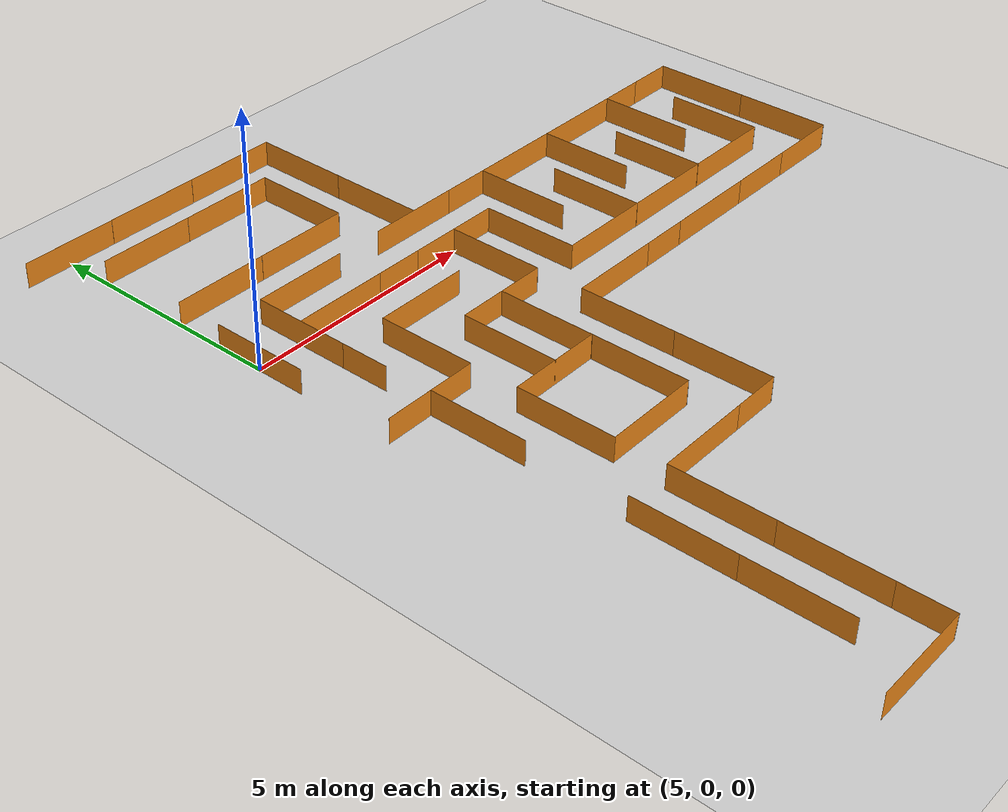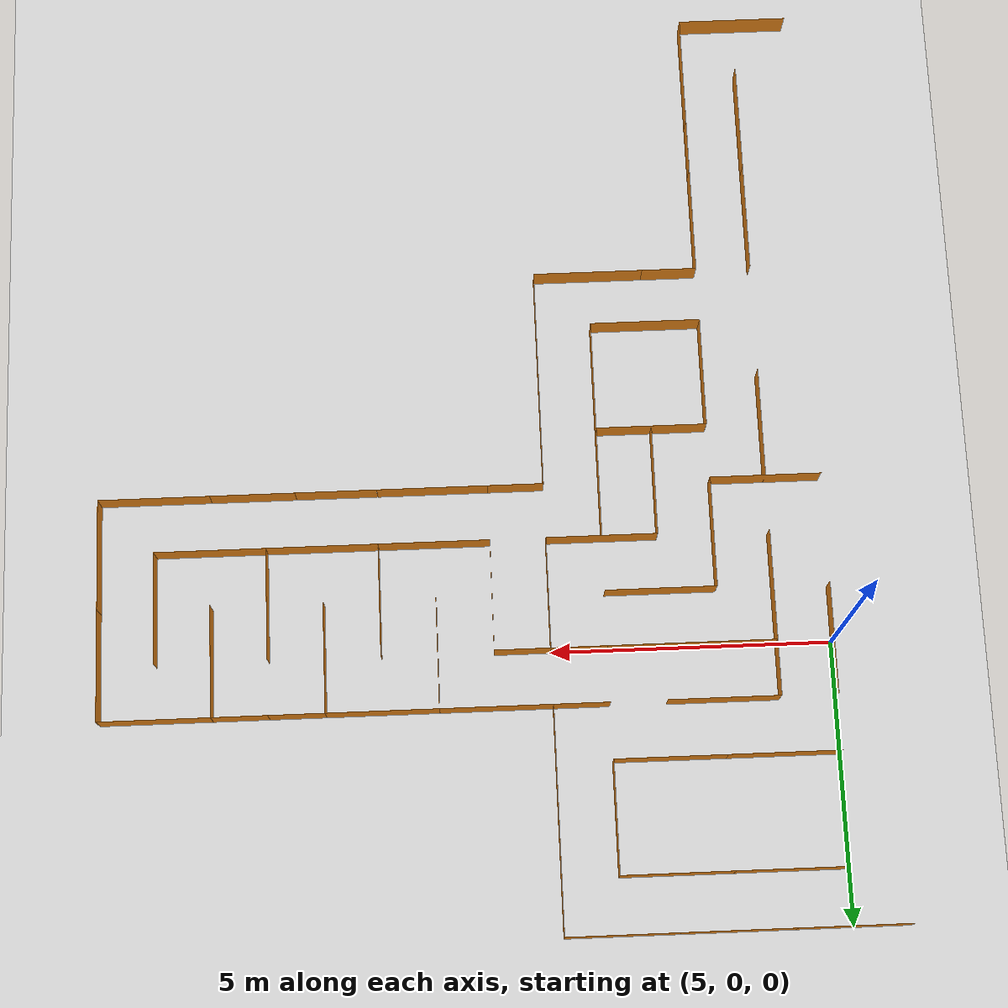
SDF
<sdf version="1.6">
 <world name="default">
  <model name="ground_plane">
   <static>1</static>
   <link name="link">
    <collision name="collision">
     <geometry><plane><normal>0 0 1</normal><size>100 100</size></plane></geometry>
     <surface><friction><ode><mu>100</mu><mu2>50</mu2></ode></friction></surface>
    </collision>
    <visual name="visual">
     <cast_shadows>0</cast_shadows>
     <geometry><plane><normal>0 0 1</normal><size>100 100</size></plane></geometry>
     <material>
      <script><uri>file://media/materials/scripts/gazebo.material</uri><name>Gazebo/Grey</name></script>
     </material>
    </visual>
   </link>
  </model>
  <model name="wall_13_clone_clone_1_clone_2">
   <static>1</static>
   <link name="link">
    <collision name="collision"><geometry><box><size>2.00836 0.001 1</size></box></geometry></collision>
    <visual name="visual">
     <geometry><box><size>2.00836 0.001 1</size></box></geometry>
     <material>
      <script><name>Gazebo/Orange</name><uri>file://media/materials/scripts/gazebo.material</uri></script>
     </material>
    </visual>
   </link>
   <pose>7 -2 0 0 0 -1.5708</pose>
  </model>
  <model name="wall_13_clone_clone_1_clone_3">
   <static>1</static>
   <link name="link">
    <collision name="collision"><geometry><box><size>2.00836 0.001 1</size></box></geometry></collision>
    <visual name="visual">
     <geometry><box><size>2.00836 0.001 1</size></box></geometry>
     <material>
      <script><name>Gazebo/Orange</name><uri>file://media/materials/scripts/gazebo.material</uri></script>
     </material>
    </visual>
   </link>
   <pose>6 -1 0 0 0 -1.5708</pose>
  </model>
  <model name="wall_13_clone_clone_1_clone_4">
   <static>1</static>
   <link name="link">
    <collision name="collision"><geometry><box><size>2.00836 0.001 1</size></box></geometry></collision>
    <visual name="visual">
     <geometry><box><size>2.00836 0.001 1</size></box></geometry>
     <material>
      <script><name>Gazebo/Orange</name><uri>file://media/materials/scripts/gazebo.material</uri></script>
     </material>
    </visual>
   </link>
   <pose>7 -2 0 0 0 -1.5708</pose>
  </model>
  <model name="wall_13_clone_clone_1_clone_5">
   <static>1</static>
   <link name="link">
    <collision name="collision"><geometry><box><size>2.00836 0.001 1</size></box></geometry></collision>
    <visual name="visual">
     <geometry><box><size>2.00836 0.001 1</size></box></geometry>
     <material>
      <script><name>Gazebo/Orange</name><uri>file://media/materials/scripts/gazebo.material</uri></script>
     </material>
    </visual>
   </link>
   <pose>6 -3 0 0 -0 3.14159</pose>
  </model>
  <model name="wall_13_clone_clone_1_clone_3_clone_2">
   <static>1</static>
   <link name="link">
    <collision name="collision"><geometry><box><size>2.00836 0.001 1</size></box></geometry></collision>
    <visual name="visual">
     <geometry><box><size>2.00836 0.001 1</size></box></geometry>
     <material>
      <script><name>Gazebo/Orange</name><uri>file://media/materials/scripts/gazebo.material</uri></script>
     </material>
    </visual>
   </link>
   <pose>7 -5 0 0 0 -1.5708</pose>
  </model>
  <model name="wall_13_clone_clone_1_clone_3_clone_3">
   <static>1</static>
   <link name="link">
    <collision name="collision"><geometry><box><size>2.00836 0.001 1</size></box></geometry></collision>
    <visual name="visual">
     <geometry><box><size>2.00836 0.001 1</size></box></geometry>
     <material>
      <script><name>Gazebo/Orange</name><uri>file://media/materials/scripts/gazebo.material</uri></script>
     </material>
    </visual>
   </link>
   <pose>6 -4 0 0 0 -1.5708</pose>
  </model>
  <model name="wall_13_clone_clone_clone_1_clone_1_clone_0">
   <static>1</static>
   <link name="link">
    <collision name="collision"><geometry><box><size>1.99802 0.001 1</size></box></geometry></collision>
    <visual name="visual">
     <geometry><box><size>1.99802 0.001 1</size></box></geometry>
     <material>
      <script><name>Gazebo/Orange</name><uri>file://media/materials/scripts/gazebo.material</uri></script>
     </material>
    </visual>
   </link>
   <pose>8 -4 0 0 -0 3.14159</pose>
  </model>
  <model name="wall_13_clone_clone_1_clone_3_clone_1_clone">
   <static>1</static>
   <link name="link">
    <collision name="collision"><geometry><box><size>2.00836 0.001 1</size></box></geometry></collision>
    <visual name="visual">
     <geometry><box><size>2.00836 0.001 1</size></box></geometry>
     <material>
      <script><name>Gazebo/Orange</name><uri>file://media/materials/scripts/gazebo.material</uri></script>
     </material>
    </visual>
   </link>
   <pose>8 -3 0 0 0 -1.5708</pose>
  </model>
  <model name="wall_13_clone_clone_clone_1_clone_1_clone_0_clone">
   <static>1</static>
   <link name="link">
    <collision name="collision"><geometry><box><size>1.99802 0.001 1</size></box></geometry></collision>
    <visual name="visual">
     <geometry><box><size>1.99802 0.001 1</size></box></geometry>
     <material>
      <script><name>Gazebo/Orange</name><uri>file://media/materials/scripts/gazebo.material</uri></script>
     </material>
    </visual>
   </link>
   <pose>7 0 0 0 -0 3.14159</pose>
  </model>
  <model name="wall_13_clone_clone_1_clone_4_clone">
   <static>1</static>
   <link name="link">
    <collision name="collision"><geometry><box><size>2.00836 0.001 1</size></box></geometry></collision>
    <visual name="visual">
     <geometry><box><size>2.00836 0.001 1</size></box></geometry>
     <material>
      <script><name>Gazebo/Orange</name><uri>file://media/materials/scripts/gazebo.material</uri></script>
     </material>
    </visual>
   </link>
   <pose>6 -1 0 0 0 -1.5708</pose>
  </model>
  <model name="wall_13_clone_clone_clone_1_clone_1_clone_0_clone_clone">
   <static>1</static>
   <link name="link">
    <collision name="collision"><geometry><box><size>1.99802 0.001 1</size></box></geometry></collision>
    <visual name="visual">
     <geometry><box><size>1.99802 0.001 1</size></box></geometry>
     <material>
      <script><name>Gazebo/Orange</name><uri>file://media/materials/scripts/gazebo.material</uri></script>
     </material>
    </visual>
   </link>
   <pose>8 0 0 0 -0 3.14159</pose>
  </model>
  <model name="wall_13_clone_clone_clone_1_clone_1_clone_0_clone_clone_0">
   <static>1</static>
   <link name="link">
    <collision name="collision"><geometry><box><size>1.99802 0.001 1</size></box></geometry></collision>
    <visual name="visual">
     <geometry><box><size>1.99802 0.001 1</size></box></geometry>
     <material>
      <script><name>Gazebo/Orange</name><uri>file://media/materials/scripts/gazebo.material</uri></script>
     </material>
    </visual>
   </link>
   <pose>9 -2 0 0 -0 3.14159</pose>
  </model>
  <model name="wall_13_clone_clone_clone_1_clone_1_clone_0_clone_clone_1">
   <static>1</static>
   <link name="link">
    <collision name="collision"><geometry><box><size>1.99802 0.001 1</size></box></geometry></collision>
    <visual name="visual">
     <geometry><box><size>1.99802 0.001 1</size></box></geometry>
     <material>
      <script><name>Gazebo/Orange</name><uri>file://media/materials/scripts/gazebo.material</uri></script>
     </material>
    </visual>
   </link>
   <pose>8 -1 0 0 -0 3.14159</pose>
  </model>
  <model name="wall_13_clone_clone_1_clone_2_clone">
   <static>1</static>
   <link name="link">
    <collision name="collision"><geometry><box><size>2.00836 0.001 1</size></box></geometry></collision>
    <visual name="visual">
     <geometry><box><size>2.00836 0.001 1</size></box></geometry>
     <material>
      <script><name>Gazebo/Orange</name><uri>file://media/materials/scripts/gazebo.material</uri></script>
     </material>
    </visual>
   </link>
   <pose>10 -1 0 0 0 -1.5708</pose>
  </model>
  <model name="wall_13_clone_clone_clone_1_clone_1_clone_0_clone_clone_clone">
   <static>1</static>
   <link name="link">
    <collision name="collision"><geometry><box><size>1.99802 0.001 1</size></box></geometry></collision>
    <visual name="visual">
     <geometry><box><size>1.99802 0.001 1</size></box></geometry>
     <material>
      <script><name>Gazebo/Orange</name><uri>file://media/materials/scripts/gazebo.material</uri></script>
     </material>
    </visual>
   </link>
   <pose>9 0 0 0 -0 3.14159</pose>
  </model>
  <model name="wall_13_clone_clone_1_clone_3_clone_1_clone_0">
   <static>1</static>
   <link name="link">
    <collision name="collision"><geometry><box><size>2.00836 0.001 1</size></box></geometry></collision>
    <visual name="visual">
     <geometry><box><size>2.00836 0.001 1</size></box></geometry>
     <material>
      <script><name>Gazebo/Orange</name><uri>file://media/materials/scripts/gazebo.material</uri></script>
     </material>
    </visual>
   </link>
   <pose>6 -8 0 0 0 -1.5708</pose>
  </model>
  <model name="wall_13_clone_clone_1_clone_3_clone_1_clone_1">
   <static>1</static>
   <link name="link">
    <collision name="collision"><geometry><box><size>2.00836 0.001 1</size></box></geometry></collision>
    <visual name="visual">
     <geometry><box><size>2.00836 0.001 1</size></box></geometry>
     <material>
      <script><name>Gazebo/Orange</name><uri>file://media/materials/scripts/gazebo.material</uri></script>
     </material>
    </visual>
   </link>
   <pose>7 -8 0 0 0 -1.5708</pose>
  </model>
  <model name="wall_13_clone_clone_1_clone_3_clone_1_clone_2">
   <static>1</static>
   <link name="link">
    <collision name="collision"><geometry><box><size>2.00836 0.001 1</size></box></geometry></collision>
    <visual name="visual">
     <geometry><box><size>2.00836 0.001 1</size></box></geometry>
     <material>
      <script><name>Gazebo/Orange</name><uri>file://media/materials/scripts/gazebo.material</uri></script>
     </material>
    </visual>
   </link>
   <pose>6 -10 0 0 0 -1.5708</pose>
  </model>
  <model name="wall_13_clone_clone_1_clone_3_clone_1_clone_3">
   <static>1</static>
   <link name="link">
    <collision name="collision"><geometry><box><size>2.00836 0.001 1</size></box></geometry></collision>
    <visual name="visual">
     <geometry><box><size>2.00836 0.001 1</size></box></geometry>
     <material>
      <script><name>Gazebo/Orange</name><uri>file://media/materials/scripts/gazebo.material</uri></script>
     </material>
    </visual>
   </link>
   <pose>7 -10 0 0 0 -1.5708</pose>
  </model>
  <model name="wall_13_clone_clone_clone_1_clone_2_clone">
   <static>1</static>
   <link name="link">
    <collision name="collision"><geometry><box><size>1.99802 0.001 1</size></box></geometry></collision>
    <visual name="visual">
     <geometry><box><size>1.99802 0.001 1</size></box></geometry>
     <material>
      <script><name>Gazebo/Orange</name><uri>file://media/materials/scripts/gazebo.material</uri></script>
     </material>
    </visual>
   </link>
   <pose>6 -12 0 0 -0 3.14159</pose>
  </model>
  <model name="wall_13_clone_clone_1_clone_3_clone_1_clone_3_clone">
   <static>1</static>
   <link name="link">
    <collision name="collision"><geometry><box><size>2.00836 0.001 1</size></box></geometry></collision>
    <visual name="visual">
     <geometry><box><size>2.00836 0.001 1</size></box></geometry>
     <material>
      <script><name>Gazebo/Orange</name><uri>file://media/materials/scripts/gazebo.material</uri></script>
     </material>
    </visual>
   </link>
   <pose>7 -11 0 0 0 -1.5708</pose>
  </model>
  <model name="wall_13_clone_clone_1_clone_3_clone_1_clone_1_clone_clone_9">
   <static>1</static>
   <link name="link">
    <collision name="collision"><geometry><box><size>2.00836 0.001 1</size></box></geometry></collision>
    <visual name="visual">
     <geometry><box><size>2.00836 0.001 1</size></box></geometry>
     <material>
      <script><name>Gazebo/Orange</name><uri>file://media/materials/scripts/gazebo.material</uri></script>
     </material>
    </visual>
   </link>
   <pose>5 0 0 0 0 -1.5708</pose>
  </model>
  <model name="wall_13_clone_clone_1_clone_3_clone_1_clone_1_clone_clone_10">
   <static>1</static>
   <link name="link">
    <collision name="collision"><geometry><box><size>2.00836 0.001 1</size></box></geometry></collision>
    <visual name="visual">
     <geometry><box><size>2.00836 0.001 1</size></box></geometry>
     <material>
      <script><name>Gazebo/Orange</name><uri>file://media/materials/scripts/gazebo.material</uri></script>
     </material>
    </visual>
   </link>
   <pose>6 0 0 0 0 -1.5708</pose>
  </model>
  <model name="wall_13_clone_clone_clone_1_clone_1_clone_2">
   <static>1</static>
   <link name="link">
    <collision name="collision"><geometry><box><size>1.99802 0.001 1</size></box></geometry></collision>
    <visual name="visual">
     <geometry><box><size>1.99802 0.001 1</size></box></geometry>
     <material>
      <script><name>Gazebo/Orange</name><uri>file://media/materials/scripts/gazebo.material</uri></script>
     </material>
    </visual>
   </link>
   <pose>6 2 0 0 -0 3.14159</pose>
  </model>
  <model name="wall_13_clone_clone_clone_1_clone_1_clone_3">
   <static>1</static>
   <link name="link">
    <collision name="collision"><geometry><box><size>1.99802 0.001 1</size></box></geometry></collision>
    <visual name="visual">
     <geometry><box><size>1.99802 0.001 1</size></box></geometry>
     <material>
      <script><name>Gazebo/Orange</name><uri>file://media/materials/scripts/gazebo.material</uri></script>
     </material>
    </visual>
   </link>
   <pose>8 2 0 0 -0 3.14159</pose>
  </model>
  <model name="wall_13_clone_clone_1_clone_3_clone_1_clone_1_clone_clone_8_clone">
   <static>1</static>
   <link name="link">
    <collision name="collision"><geometry><box><size>2.00836 0.001 1</size></box></geometry></collision>
    <visual name="visual">
     <geometry><box><size>2.00836 0.001 1</size></box></geometry>
     <material>
      <script><name>Gazebo/Orange</name><uri>file://media/materials/scripts/gazebo.material</uri></script>
     </material>
    </visual>
   </link>
   <pose>10 2 0 0 0 -1.5708</pose>
  </model>
  <model name="wall_13_clone_clone_1_clone_3_clone_1_clone_1_clone_clone_8_clone_0">
   <static>1</static>
   <link name="link">
    <collision name="collision"><geometry><box><size>2.00836 0.001 1</size></box></geometry></collision>
    <visual name="visual">
     <geometry><box><size>2.00836 0.001 1</size></box></geometry>
     <material>
      <script><name>Gazebo/Orange</name><uri>file://media/materials/scripts/gazebo.material</uri></script>
     </material>
    </visual>
   </link>
   <pose>10 4 0 0 0 -1.5708</pose>
  </model>
  <model name="wall_13_clone_clone_1_clone_3_clone_1_clone_1_clone_clone_8_clone_1">
   <static>1</static>
   <link name="link">
    <collision name="collision"><geometry><box><size>2.00836 0.001 1</size></box></geometry></collision>
    <visual name="visual">
     <geometry><box><size>2.00836 0.001 1</size></box></geometry>
     <material>
      <script><name>Gazebo/Orange</name><uri>file://media/materials/scripts/gazebo.material</uri></script>
     </material>
    </visual>
   </link>
   <pose>9 3 0 0 0 -1.5708</pose>
  </model>
  <model name="wall_13_clone_clone_clone_1_clone_1_clone_2_clone">
   <static>1</static>
   <link name="link">
    <collision name="collision"><geometry><box><size>1.99802 0.001 1</size></box></geometry></collision>
    <visual name="visual">
     <geometry><box><size>1.99802 0.001 1</size></box></geometry>
     <material>
      <script><name>Gazebo/Orange</name><uri>file://media/materials/scripts/gazebo.material</uri></script>
     </material>
    </visual>
   </link>
   <pose>8 4 0 0 -0 3.14159</pose>
  </model>
  <model name="wall_13_clone_clone_clone_1_clone_1_clone_2_clone_0">
   <static>1</static>
   <link name="link">
    <collision name="collision"><geometry><box><size>1.99802 0.001 1</size></box></geometry></collision>
    <visual name="visual">
     <geometry><box><size>1.99802 0.001 1</size></box></geometry>
     <material>
      <script><name>Gazebo/Orange</name><uri>file://media/materials/scripts/gazebo.material</uri></script>
     </material>
    </visual>
   </link>
   <pose>6 4 0 0 -0 3.14159</pose>
  </model>
  <model name="wall_13_clone_clone_clone_1_clone_1_clone_2_clone_1">
   <static>1</static>
   <link name="link">
    <collision name="collision"><geometry><box><size>1.99802 0.001 1</size></box></geometry></collision>
    <visual name="visual">
     <geometry><box><size>1.99802 0.001 1</size></box></geometry>
     <material>
      <script><name>Gazebo/Orange</name><uri>file://media/materials/scripts/gazebo.material</uri></script>
     </material>
    </visual>
   </link>
   <pose>9 5 0 0 -0 3.14159</pose>
  </model>
  <model name="wall_13_clone_clone_clone_1_clone_1_clone_2_clone_2">
   <static>1</static>
   <link name="link">
    <collision name="collision"><geometry><box><size>1.99802 0.001 1</size></box></geometry></collision>
    <visual name="visual">
     <geometry><box><size>1.99802 0.001 1</size></box></geometry>
     <material>
      <script><name>Gazebo/Orange</name><uri>file://media/materials/scripts/gazebo.material</uri></script>
     </material>
    </visual>
   </link>
   <pose>7 5 0 0 -0 3.14159</pose>
  </model>
  <model name="wall_13_clone_clone_clone_1_clone_1_clone_2_clone_3">
   <static>1</static>
   <link name="link">
    <collision name="collision"><geometry><box><size>1.99802 0.001 1</size></box></geometry></collision>
    <visual name="visual">
     <geometry><box><size>1.99802 0.001 1</size></box></geometry>
     <material>
      <script><name>Gazebo/Orange</name><uri>file://media/materials/scripts/gazebo.material</uri></script>
     </material>
    </visual>
   </link>
   <pose>5 5 0 0 -0 3.14159</pose>
  </model>
  <model name="wall_13_clone_clone_clone_1_clone_1_clone_2_clone_14">
   <static>1</static>
   <link name="link">
    <collision name="collision"><geometry><box><size>1.99802 0.001 1</size></box></geometry></collision>
    <visual name="visual">
     <geometry><box><size>1.99802 0.001 1</size></box></geometry>
     <material>
      <script><name>Gazebo/Orange</name><uri>file://media/materials/scripts/gazebo.material</uri></script>
     </material>
    </visual>
   </link>
   <pose>7 1 0 0 -0 3.14159</pose>
  </model>
  <model name="wall_13_clone_clone_clone_1_clone_1_clone_2_clone_15">
   <static>1</static>
   <link name="link">
    <collision name="collision"><geometry><box><size>1.99802 0.001 1</size></box></geometry></collision>
    <visual name="visual">
     <geometry><box><size>1.99802 0.001 1</size></box></geometry>
     <material>
      <script><name>Gazebo/Orange</name><uri>file://media/materials/scripts/gazebo.material</uri></script>
     </material>
    </visual>
   </link>
   <pose>10 1 0 0 -0 3.14159</pose>
  </model>
  <model name="wall_13_clone_clone_clone_1_clone_1_clone_2_clone_16">
   <static>1</static>
   <link name="link">
    <collision name="collision"><geometry><box><size>1.99802 0.001 1</size></box></geometry></collision>
    <visual name="visual">
     <geometry><box><size>1.99802 0.001 1</size></box></geometry>
     <material>
      <script><name>Gazebo/Orange</name><uri>file://media/materials/scripts/gazebo.material</uri></script>
     </material>
    </visual>
   </link>
   <pose>10 0 0 0 -0 3.14159</pose>
  </model>
  <model name="wall_13_clone_clone_1_clone_3_clone_1_clone_1_clone_clone_8_clone_clone">
   <static>1</static>
   <link name="link">
    <collision name="collision"><geometry><box><size>2.00836 0.001 1</size></box></geometry></collision>
    <visual name="visual">
     <geometry><box><size>2.00836 0.001 1</size></box></geometry>
     <material>
      <script><name>Gazebo/Orange</name><uri>file://media/materials/scripts/gazebo.material</uri></script>
     </material>
    </visual>
   </link>
   <pose>12 0 0 0 0 -1.5708</pose>
  </model>
  <model name="wall_13_clone_clone_clone_1_clone_1_clone_2_clone_15_clone">
   <static>1</static>
   <link name="link">
    <collision name="collision"><geometry><box><size>1.99802 0.001 1</size></box></geometry></collision>
    <visual name="visual">
     <geometry><box><size>1.99802 0.001 1</size></box></geometry>
     <material>
      <script><name>Gazebo/Orange</name><uri>file://media/materials/scripts/gazebo.material</uri></script>
     </material>
    </visual>
   </link>
   <pose>11 1 0 0 -0 3.14159</pose>
  </model>
  <model name="wall_13_clone_clone_clone_1_clone_1_clone_2_clone_15_clone_0">
   <static>1</static>
   <link name="link">
    <collision name="collision"><geometry><box><size>1.99802 0.001 1</size></box></geometry></collision>
    <visual name="visual">
     <geometry><box><size>1.99802 0.001 1</size></box></geometry>
     <material>
      <script><name>Gazebo/Orange</name><uri>file://media/materials/scripts/gazebo.material</uri></script>
     </material>
    </visual>
   </link>
   <pose>12 -2 0 0 -0 3.14159</pose>
  </model>
  <model name="wall_13_clone_clone_1_clone_2_clone_clone">
   <static>1</static>
   <link name="link">
    <collision name="collision"><geometry><box><size>2.00836 0.001 1</size></box></geometry></collision>
    <visual name="visual">
     <geometry><box><size>2.00836 0.001 1</size></box></geometry>
     <material>
      <script><name>Gazebo/Orange</name><uri>file://media/materials/scripts/gazebo.material</uri></script>
     </material>
    </visual>
   </link>
   <pose>11 -1 0 0 0 -1.5708</pose>
  </model>
  <model name="wall_13_clone_clone_1_clone_2_clone_clone_0">
   <static>1</static>
   <link name="link">
    <collision name="collision"><geometry><box><size>2.00836 0.001 1</size></box></geometry></collision>
    <visual name="visual">
     <geometry><box><size>2.00836 0.001 1</size></box></geometry>
     <material>
      <script><name>Gazebo/Orange</name><uri>file://media/materials/scripts/gazebo.material</uri></script>
     </material>
    </visual>
   </link>
   <pose>13 -1 0 0 0 -1.5708</pose>
  </model>
  <model name="wall_13_clone_clone_clone_1_clone_1_clone_2_clone_15_clone_clone">
   <static>1</static>
   <link name="link">
    <collision name="collision"><geometry><box><size>1.99802 0.001 1</size></box></geometry></collision>
    <visual name="visual">
     <geometry><box><size>1.99802 0.001 1</size></box></geometry>
     <material>
      <script><name>Gazebo/Orange</name><uri>file://media/materials/scripts/gazebo.material</uri></script>
     </material>
    </visual>
   </link>
   <pose>13 1 0 0 -0 3.14159</pose>
  </model>
  <model name="wall_13_clone_clone_1_clone_2_clone_clone_0_clone">
   <static>1</static>
   <link name="link">
    <collision name="collision"><geometry><box><size>2.00836 0.001 1</size></box></geometry></collision>
    <visual name="visual">
     <geometry><box><size>2.00836 0.001 1</size></box></geometry>
     <material>
      <script><name>Gazebo/Orange</name><uri>file://media/materials/scripts/gazebo.material</uri></script>
     </material>
    </visual>
   </link>
   <pose>14 0 0 0 0 -1.5708</pose>
  </model>
  <model name="wall_13_clone_clone_clone_1_clone_1_clone_2_clone_15_clone_0_clone">
   <static>1</static>
   <link name="link">
    <collision name="collision"><geometry><box><size>1.99802 0.001 1</size></box></geometry></collision>
    <visual name="visual">
     <geometry><box><size>1.99802 0.001 1</size></box></geometry>
     <material>
      <script><name>Gazebo/Orange</name><uri>file://media/materials/scripts/gazebo.material</uri></script>
     </material>
    </visual>
   </link>
   <pose>14 -2 0 0 -0 3.14159</pose>
  </model>
  <model name="wall_13_clone_clone_1_clone_2_clone_clone_0_clone_clone">
   <static>1</static>
   <link name="link">
    <collision name="collision"><geometry><box><size>2.00836 0.001 1</size></box></geometry></collision>
    <visual name="visual">
     <geometry><box><size>2.00836 0.001 1</size></box></geometry>
     <material>
      <script><name>Gazebo/Orange</name><uri>file://media/materials/scripts/gazebo.material</uri></script>
     </material>
    </visual>
   </link>
   <pose>15 -1 0 0 0 -1.5708</pose>
  </model>
  <model name="wall_13_clone_clone_1_clone_2_clone_clone_0_clone_clone_0">
   <static>1</static>
   <link name="link">
    <collision name="collision"><geometry><box><size>2.00836 0.001 1</size></box></geometry></collision>
    <visual name="visual">
     <geometry><box><size>2.00836 0.001 1</size></box></geometry>
     <material>
      <script><name>Gazebo/Orange</name><uri>file://media/materials/scripts/gazebo.material</uri></script>
     </material>
    </visual>
   </link>
   <pose>16 0 0 0 0 -1.5708</pose>
  </model>
  <model name="wall_13_clone_clone_1_clone_2_clone_clone_0_clone_clone_1">
   <static>1</static>
   <link name="link">
    <collision name="collision"><geometry><box><size>2.00836 0.001 1</size></box></geometry></collision>
    <visual name="visual">
     <geometry><box><size>2.00836 0.001 1</size></box></geometry>
     <material>
      <script><name>Gazebo/Orange</name><uri>file://media/materials/scripts/gazebo.material</uri></script>
     </material>
    </visual>
   </link>
   <pose>17 -1 0 0 0 -1.5708</pose>
  </model>
  <model name="wall_13_clone_clone_clone_1_clone_1_clone_2_clone_15_clone_0_clone_clone">
   <static>1</static>
   <link name="link">
    <collision name="collision"><geometry><box><size>1.99802 0.001 1</size></box></geometry></collision>
    <visual name="visual">
     <geometry><box><size>1.99802 0.001 1</size></box></geometry>
     <material>
      <script><name>Gazebo/Orange</name><uri>file://media/materials/scripts/gazebo.material</uri></script>
     </material>
    </visual>
   </link>
   <pose>16 -2 0 0 -0 3.14159</pose>
  </model>
  <model name="wall_13_clone_clone_clone_1_clone_1_clone_2_clone_15_clone_0_clone_clone_0">
   <static>1</static>
   <link name="link">
    <collision name="collision"><geometry><box><size>1.99802 0.001 1</size></box></geometry></collision>
    <visual name="visual">
     <geometry><box><size>1.99802 0.001 1</size></box></geometry>
     <material>
      <script><name>Gazebo/Orange</name><uri>file://media/materials/scripts/gazebo.material</uri></script>
     </material>
    </visual>
   </link>
   <pose>15 1 0 0 -0 3.14159</pose>
  </model>
  <model name="wall_13_clone_clone_clone_1_clone_1_clone_2_clone_15_clone_0_clone_clone_1">
   <static>1</static>
   <link name="link">
    <collision name="collision"><geometry><box><size>1.99802 0.001 1</size></box></geometry></collision>
    <visual name="visual">
     <geometry><box><size>1.99802 0.001 1</size></box></geometry>
     <material>
      <script><name>Gazebo/Orange</name><uri>file://media/materials/scripts/gazebo.material</uri></script>
     </material>
    </visual>
   </link>
   <pose>16 1 0 0 -0 3.14159</pose>
  </model>
  <model name="wall_13_clone_clone_clone_1_clone_1_clone_2_clone_15_clone_0_clone_clone_1_clone">
   <static>1</static>
   <link name="link">
    <collision name="collision"><geometry><box><size>1.99802 0.001 1</size></box></geometry></collision>
    <visual name="visual">
     <geometry><box><size>1.99802 0.001 1</size></box></geometry>
     <material>
      <script><name>Gazebo/Orange</name><uri>file://media/materials/scripts/gazebo.material</uri></script>
     </material>
    </visual>
   </link>
   <pose>17 1 0 0 -0 3.14159</pose>
  </model>
  <model name="wall_13_clone_clone_1_clone_2_clone_clone_0_clone_clone_1_clone">
   <static>1</static>
   <link name="link">
    <collision name="collision"><geometry><box><size>2.00836 0.001 1</size></box></geometry></collision>
    <visual name="visual">
     <geometry><box><size>2.00836 0.001 1</size></box></geometry>
     <material>
      <script><name>Gazebo/Orange</name><uri>file://media/materials/scripts/gazebo.material</uri></script>
     </material>
    </visual>
   </link>
   <pose>18 0 0 0 0 -1.5708</pose>
  </model>
  <model name="wall_13_clone_clone_1_clone_2_clone_clone_0_clone_clone_1_clone_0">
   <static>1</static>
   <link name="link">
    <collision name="collision"><geometry><box><size>2.00836 0.001 1</size></box></geometry></collision>
    <visual name="visual">
     <geometry><box><size>2.00836 0.001 1</size></box></geometry>
     <material>
      <script><name>Gazebo/Orange</name><uri>file://media/materials/scripts/gazebo.material</uri></script>
     </material>
    </visual>
   </link>
   <pose>18 -2 0 0 0 -1.5708</pose>
  </model>
  <model name="wall_13_clone_clone_clone_1_clone_1_clone_2_clone_15_clone_0_clone_clone_clone">
   <static>1</static>
   <link name="link">
    <collision name="collision"><geometry><box><size>1.99802 0.001 1</size></box></geometry></collision>
    <visual name="visual">
     <geometry><box><size>1.99802 0.001 1</size></box></geometry>
     <material>
      <script><name>Gazebo/Orange</name><uri>file://media/materials/scripts/gazebo.material</uri></script>
     </material>
    </visual>
   </link>
   <pose>17 -3 0 0 -0 3.14159</pose>
  </model>
  <model name="wall_13_clone_clone_clone_1_clone_1_clone_2_clone_15_clone_0_clone_clone_clone_0">
   <static>1</static>
   <link name="link">
    <collision name="collision"><geometry><box><size>1.99802 0.001 1</size></box></geometry></collision>
    <visual name="visual">
     <geometry><box><size>1.99802 0.001 1</size></box></geometry>
     <material>
      <script><name>Gazebo/Orange</name><uri>file://media/materials/scripts/gazebo.material</uri></script>
     </material>
    </visual>
   </link>
   <pose>15.4676 -3 0 0 -0 3.14159</pose>
  </model>
  <model name="wall_13_clone_clone_clone_1_clone_1_clone_2_clone_15_clone_0_clone_clone_clone_1">
   <static>1</static>
   <link name="link">
    <collision name="collision"><geometry><box><size>1.99802 0.001 1</size></box></geometry></collision>
    <visual name="visual">
     <geometry><box><size>1.99802 0.001 1</size></box></geometry>
     <material>
      <script><name>Gazebo/Orange</name><uri>file://media/materials/scripts/gazebo.material</uri></script>
     </material>
    </visual>
   </link>
   <pose>14 -3 0 0 -0 3.14159</pose>
  </model>
  <model name="wall_13_clone_clone_clone_1_clone_1_clone_2_clone_15_clone_0_clone_clone_clone_2">
   <static>1</static>
   <link name="link">
    <collision name="collision"><geometry><box><size>1.99802 0.001 1</size></box></geometry></collision>
    <visual name="visual">
     <geometry><box><size>1.99802 0.001 1</size></box></geometry>
     <material>
      <script><name>Gazebo/Orange</name><uri>file://media/materials/scripts/gazebo.material</uri></script>
     </material>
    </visual>
   </link>
   <pose>12 -3 0 0 -0 3.14159</pose>
  </model>
  <model name="wall_13_clone_clone_clone_1_clone_1_clone_2_clone_15_clone_0_clone_clone_clone_3">
   <static>1</static>
   <link name="link">
    <collision name="collision"><geometry><box><size>1.99802 0.001 1</size></box></geometry></collision>
    <visual name="visual">
     <geometry><box><size>1.99802 0.001 1</size></box></geometry>
     <material>
      <script><name>Gazebo/Orange</name><uri>file://media/materials/scripts/gazebo.material</uri></script>
     </material>
    </visual>
   </link>
   <pose>11 -3 0 0 -0 3.14159</pose>
  </model>
  <model name="wall_13_clone_clone_1_clone_3_clone_1_clone_clone">
   <static>1</static>
   <link name="link">
    <collision name="collision"><geometry><box><size>2.00836 0.001 1</size></box></geometry></collision>
    <visual name="visual">
     <geometry><box><size>2.00836 0.001 1</size></box></geometry>
     <material>
      <script><name>Gazebo/Orange</name><uri>file://media/materials/scripts/gazebo.material</uri></script>
     </material>
    </visual>
   </link>
   <pose>9 -3 0 0 0 -1.5708</pose>
  </model>
  <model name="wall_13_clone_clone_1_clone_3_clone_1_clone_clone_0">
   <static>1</static>
   <link name="link">
    <collision name="collision"><geometry><box><size>2.00836 0.001 1</size></box></geometry></collision>
    <visual name="visual">
     <geometry><box><size>2.00836 0.001 1</size></box></geometry>
     <material>
      <script><name>Gazebo/Orange</name><uri>file://media/materials/scripts/gazebo.material</uri></script>
     </material>
    </visual>
   </link>
   <pose>9 -5 0 0 0 -1.5708</pose>
  </model>
  <model name="wall_13_clone_clone_1_clone_3_clone_1_clone_clone_1">
   <static>1</static>
   <link name="link">
    <collision name="collision"><geometry><box><size>2.00836 0.001 1</size></box></geometry></collision>
    <visual name="visual">
     <geometry><box><size>2.00836 0.001 1</size></box></geometry>
     <material>
      <script><name>Gazebo/Orange</name><uri>file://media/materials/scripts/gazebo.material</uri></script>
     </material>
    </visual>
   </link>
   <pose>10 -4 0 0 0 -1.5708</pose>
  </model>
  <model name="wall_13_clone_clone_1_clone_3_clone_1_clone_clone_2">
   <static>1</static>
   <link name="link">
    <collision name="collision"><geometry><box><size>2.00836 0.001 1</size></box></geometry></collision>
    <visual name="visual">
     <geometry><box><size>2.00836 0.001 1</size></box></geometry>
     <material>
      <script><name>Gazebo/Orange</name><uri>file://media/materials/scripts/gazebo.material</uri></script>
     </material>
    </visual>
   </link>
   <pose>10 -6 0 0 0 -1.5708</pose>
  </model>
  <model name="wall_13_clone_clone_clone_1_clone_1_clone_0_clone_clone_1_clone">
   <static>1</static>
   <link name="link">
    <collision name="collision"><geometry><box><size>1.99802 0.001 1</size></box></geometry></collision>
    <visual name="visual">
     <geometry><box><size>1.99802 0.001 1</size></box></geometry>
     <material>
      <script><name>Gazebo/Orange</name><uri>file://media/materials/scripts/gazebo.material</uri></script>
     </material>
    </visual>
   </link>
   <pose>9 -7 0 0 -0 3.14159</pose>
  </model>
  <model name="wall_13_clone_clone_clone_1_clone_1_clone_0_clone_clone_1_clone_0">
   <static>1</static>
   <link name="link">
    <collision name="collision"><geometry><box><size>1.99802 0.001 1</size></box></geometry></collision>
    <visual name="visual">
     <geometry><box><size>1.99802 0.001 1</size></box></geometry>
     <material>
      <script><name>Gazebo/Orange</name><uri>file://media/materials/scripts/gazebo.material</uri></script>
     </material>
    </visual>
   </link>
   <pose>8 -7 0 0 -0 3.14159</pose>
  </model>
  <model name="wall_13_clone_clone_clone_1_clone_1_clone_0_clone_clone_1_clone_1">
   <static>1</static>
   <link name="link">
    <collision name="collision"><geometry><box><size>1.99802 0.001 1</size></box></geometry></collision>
    <visual name="visual">
     <geometry><box><size>1.99802 0.001 1</size></box></geometry>
     <material>
      <script><name>Gazebo/Orange</name><uri>file://media/materials/scripts/gazebo.material</uri></script>
     </material>
    </visual>
   </link>
   <pose>8 -6 0 0 -0 3.14159</pose>
  </model>
 </world>
</sdf>
